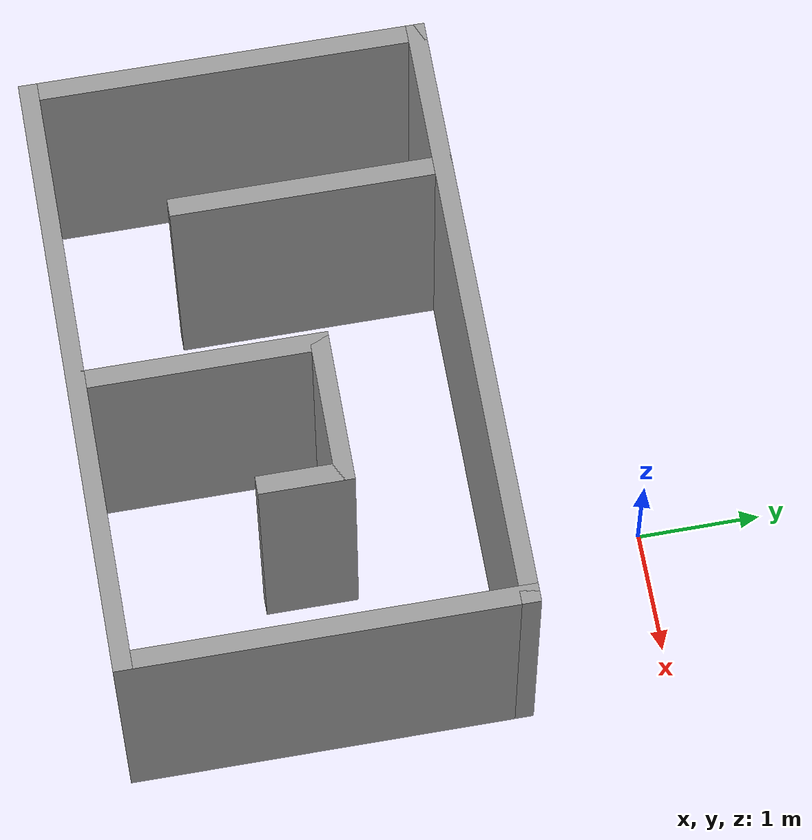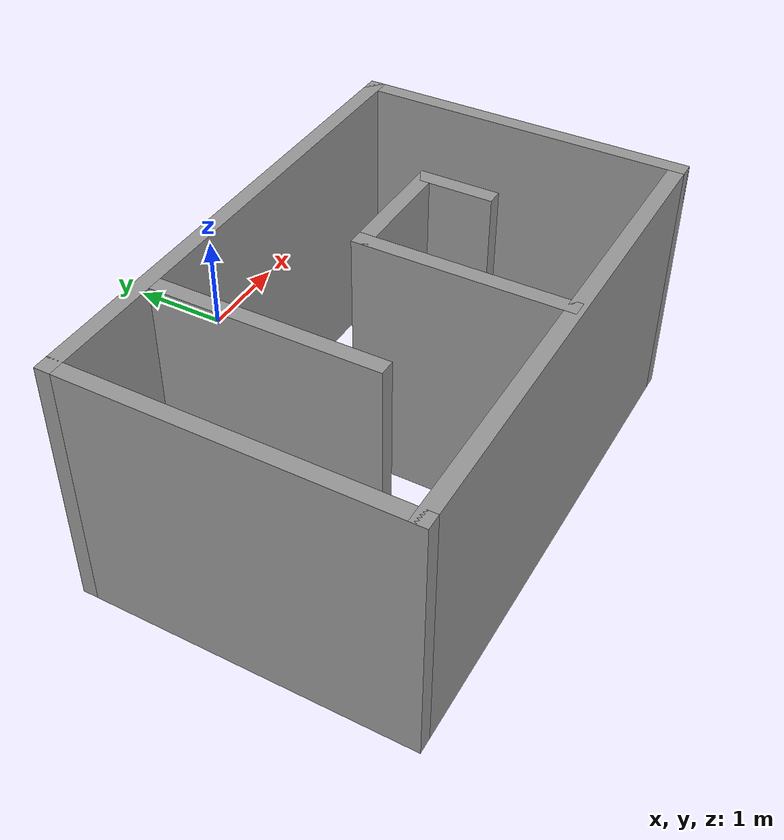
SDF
<?xml version='1.0'?>
<sdf version='1.7'>
  <model name='testmodel'>
    <pose>-1.13152 -2.18935 0 0 -0 0</pose>
    <link name='Wall_0'>
      <collision name='Wall_0_Collision'>
        <geometry>
          <box>
            <size>5 0.15 2.5</size>
          </box>
        </geometry>
        <pose>0 0 1.25 0 -0 0</pose>
      </collision>
      <visual name='Wall_0_Visual'>
        <pose>0 0 1.25 0 -0 0</pose>
        <geometry>
          <box>
            <size>5 0.15 2.5</size>
          </box>
        </geometry>
        <material>
          <script>
            <uri>file://media/materials/scripts/gazebo.material</uri>
            <name>Gazebo/Grey</name>
          </script>
          <ambient>1 1 1 1</ambient>
        </material>
        <meta>
          <layer>0</layer>
        </meta>
      </visual>
      <pose>0 0.98565 0 0 -0 3.14159</pose>
    </link>
    <link name='Wall_1'>
      <collision name='Wall_1_Collision'>
        <geometry>
          <box>
            <size>3.25 0.15 2.5</size>
          </box>
        </geometry>
        <pose>0 0 1.25 0 -0 0</pose>
      </collision>
      <visual name='Wall_1_Visual'>
        <pose>0 0 1.25 0 -0 0</pose>
        <geometry>
          <box>
            <size>3.25 0.15 2.5</size>
          </box>
        </geometry>
        <material>
          <script>
            <uri>file://media/materials/scripts/gazebo.material</uri>
            <name>Gazebo/Grey</name>
          </script>
          <ambient>1 1 1 1</ambient>
        </material>
        <meta>
          <layer>0</layer>
        </meta>
      </visual>
      <pose>-2.425 -0.56435 0 0 -0 -1.5708</pose>
    </link>
    <link name='Wall_10'>
      <collision name='Wall_10_Collision'>
        <geometry>
          <box>
            <size>1.25 0.15 2.5</size>
          </box>
        </geometry>
        <pose>0 0 1.25 0 -0 0</pose>
      </collision>
      <visual name='Wall_10_Visual'>
        <pose>0 0 1.25 0 -0 0</pose>
        <geometry>
          <box>
            <size>1.25 0.15 2.5</size>
          </box>
        </geometry>
        <material>
          <script>
            <uri>file://media/materials/scripts/gazebo.material</uri>
            <name>Gazebo/Grey</name>
          </script>
          <ambient>1 1 1 1</ambient>
        </material>
        <meta>
          <layer>0</layer>
        </meta>
      </visual>
      <pose>0.6474 -0.219325 0 0 -0 0</pose>
    </link>
    <link name='Wall_11'>
      <collision name='Wall_11_Collision'>
        <geometry>
          <box>
            <size>0.75 0.15 2.5</size>
          </box>
        </geometry>
        <pose>0 0 1.25 0 -0 0</pose>
      </collision>
      <visual name='Wall_11_Visual'>
        <pose>0 0 1.25 0 -0 0</pose>
        <geometry>
          <box>
            <size>0.75 0.15 2.5</size>
          </box>
        </geometry>
        <material>
          <script>
            <uri>file://media/materials/scripts/gazebo.material</uri>
            <name>Gazebo/Grey</name>
          </script>
          <ambient>1 1 1 1</ambient>
        </material>
        <meta>
          <layer>0</layer>
        </meta>
      </visual>
      <pose>1.1974 -0.519325 0 0 -0 -1.5708</pose>
    </link>
    <link name='Wall_2'>
      <collision name='Wall_2_Collision'>
        <geometry>
          <box>
            <size>5 0.15 2.5</size>
          </box>
        </geometry>
        <pose>0 0 1.25 0 -0 0</pose>
      </collision>
      <visual name='Wall_2_Visual'>
        <pose>0 0 1.25 0 -0 0</pose>
        <geometry>
          <box>
            <size>5 0.15 2.5</size>
          </box>
        </geometry>
        <material>
          <script>
            <uri>file://media/materials/scripts/gazebo.material</uri>
            <name>Gazebo/Grey</name>
          </script>
          <ambient>1 1 1 1</ambient>
        </material>
        <meta>
          <layer>0</layer>
        </meta>
      </visual>
      <pose>0 -2.11435 0 0 -0 0</pose>
    </link>
    <link name='Wall_3'>
      <collision name='Wall_3_Collision'>
        <geometry>
          <box>
            <size>3.25 0.15 2.5</size>
          </box>
        </geometry>
        <pose>0 0 1.25 0 -0 0</pose>
      </collision>
      <visual name='Wall_3_Visual'>
        <pose>0 0 1.25 0 -0 0</pose>
        <geometry>
          <box>
            <size>3.25 0.15 2.5</size>
          </box>
        </geometry>
        <material>
          <script>
            <uri>file://media/materials/scripts/gazebo.material</uri>
            <name>Gazebo/Grey</name>
          </script>
          <ambient>1 1 1 1</ambient>
        </material>
        <meta>
          <layer>0</layer>
        </meta>
      </visual>
      <pose>2.425 -0.56435 0 0 -0 1.5708</pose>
    </link>
    <link name='Wall_7'>
      <collision name='Wall_7_Collision'>
        <geometry>
          <box>
            <size>2.25 0.15 2.5</size>
          </box>
        </geometry>
        <pose>0 0 1.25 0 -0 0</pose>
      </collision>
      <visual name='Wall_7_Visual'>
        <pose>0 0 1.25 0 -0 0</pose>
        <geometry>
          <box>
            <size>2.25 0.15 2.5</size>
          </box>
        </geometry>
        <material>
          <script>
            <uri>file://media/materials/scripts/gazebo.material</uri>
            <name>Gazebo/Grey</name>
          </script>
          <ambient>1 1 1 1</ambient>
        </material>
        <meta>
          <layer>0</layer>
        </meta>
      </visual>
      <pose>-1.23832 -0.06435 0 0 -0 -1.5708</pose>
    </link>
    <link name='Wall_9'>
      <collision name='Wall_9_Collision'>
        <geometry>
          <box>
            <size>2 0.15 2.5</size>
          </box>
        </geometry>
        <pose>0 0 1.25 0 -0 0</pose>
      </collision>
      <visual name='Wall_9_Visual'>
        <pose>0 0 1.25 0 -0 0</pose>
        <geometry>
          <box>
            <size>2 0.15 2.5</size>
          </box>
        </geometry>
        <material>
          <script>
            <uri>file://media/materials/scripts/gazebo.material</uri>
            <name>Gazebo/Grey</name>
          </script>
          <ambient>1 1 1 1</ambient>
        </material>
        <meta>
          <layer>0</layer>
        </meta>
      </visual>
      <pose>0.0974 -1.14433 0 0 -0 1.5708</pose>
    </link>
    <static>1</static>
  </model>
</sdf>
